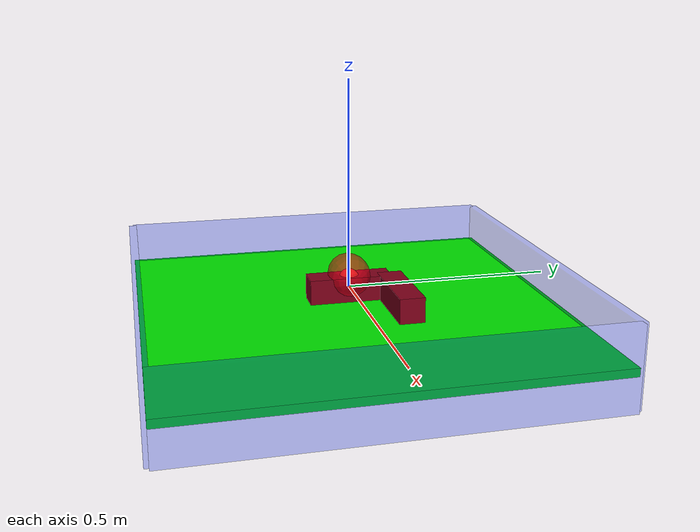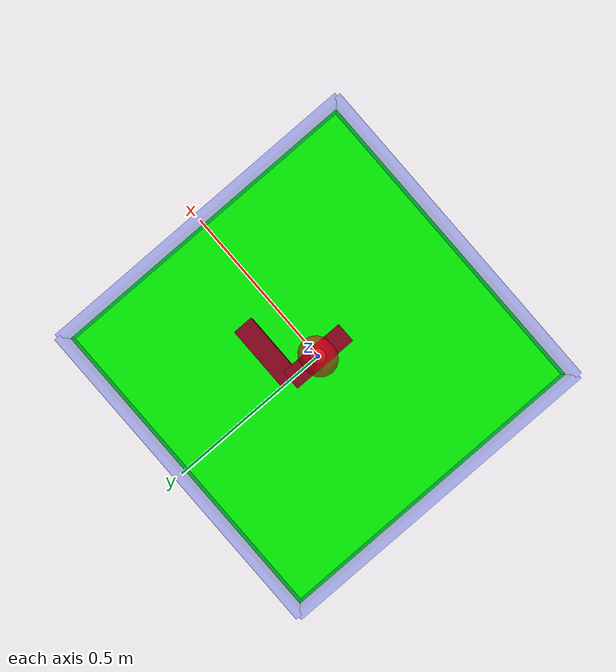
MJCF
<mujoco model="pushing2d">

    <compiler inertiafromgeom="auto" angle="radian" coordinate="local" />
    <size njmax="2000" nconmax="500"/>
    <option timestep="0.01" gravity="0 0 -9.81" iterations="20" integrator="Euler" />
    <default>
        <joint limited="false" damping="1" />
        <geom contype="1" conaffinity="1" condim="4" friction=".5 .1 .1" density="1000" margin="0.002" />
    </default>

    <worldbody>
        <camera name="maincam" mode= "fixed" fovy="75" euler="0 0 0" pos="0 0 .75"/>
        <body name="particle" pos="0 0 0.03">
            <inertial pos="0 0 0" mass="5" diaginertia="166.667 166.667 166.667"/>
            <geom name="particle_geom" type="capsule" fromto="-0.01 0 0 0.01 0 0" size="0.05" rgba="0.9 0 0.1 0.6" />
            <joint name="ball_x" type="slide" pos="0 0 0" axis="1 0 0" />
            <joint name="ball_y" type="slide" pos="0 0 0" axis="0 1 0" />

            <sensor>
                <site name="sensorsurf" pos="0 0 0.035" size="0.05" type="ellipsoid" rgba="0.3 0.2 0.1 0.3"/>
                <touch name="touchsensor" site="sensorsurf" />
            </sensor>

        </body>

        <body name="container" pos="0  0  -0.05">

            <body name="border_front" pos="0 -.5  0">
                 <geom type="box" size=".5 .01 .1" rgba="0 .1 .9 .3"/>
            </body>

            <body name="border_rear" pos="0 .5  0">
                 <geom type="box" size=".5 .01 .1" rgba="0 .1 .9 .3"/>
            </body>

            <body name="border_right" pos=".5 0  0">
                 <geom type="box" size=".01  .5 .1" rgba="0 .1 .9 .3"/>
            </body>

            <body name="border_left" pos="-.5 0  0">
                 <geom type="box" size=".01  .5 .1" rgba="0 .1 .9 .3"/>
            </body>

            <body name="table" pos="0 0 -.01">
                 <geom type="box" size=".5  .5 .01" rgba="0 .9 0 1"/>
            </body>
        </body>

        <body name="object1" pos="0 0 0">
            <site name="reference_point" pos="0 0 0.02" size="0.025" type="sphere" rgba="0.9 0.2 0.1 1"/>
            <joint type="free"/>
            <geom type="box" size=".03 .1 .03" rgba="0.5 0.0 0.1 1" />
            <geom type="box" pos=".1 .1 0.0" size=".1 0.03 .03" rgba="0.5 0.0 0.1 1" />
        </body>

        <body name="goal_body" pos="0 0 0">
            <geom name="goal_point" pos="0 0 0.02" size="0.025" type="sphere" contype="0" conaffinity="0" rgba="0.1 0.2 0.9 1"/>
            <joint name="goalbody_x" type="slide" pos="0 0 0" axis="1 0 0" />
            <joint name="goalbody_y" type="slide" pos="0 0 0" axis="0 1 0" />
        </body>

    </worldbody>

    <actuator>
        <motor joint="ball_x" ctrlrange="-100.0 100.0" ctrllimited="true"/>
        <motor joint="ball_y" ctrlrange="-100.0 100.0" ctrllimited="true"/>
    </actuator>
</mujoco>
